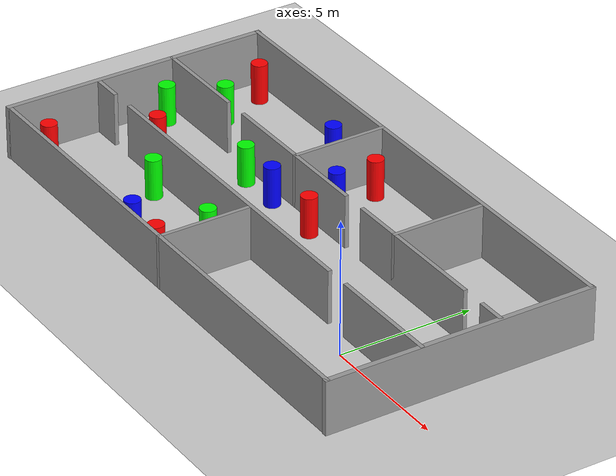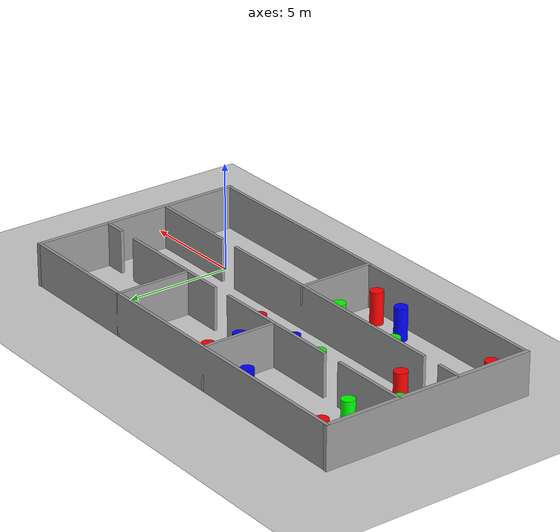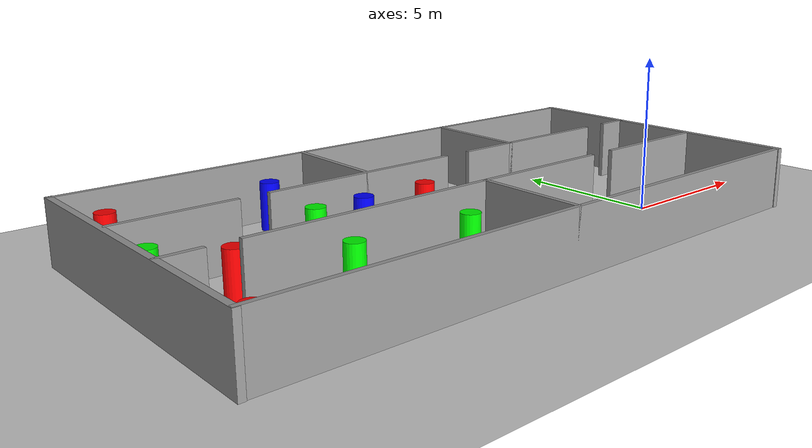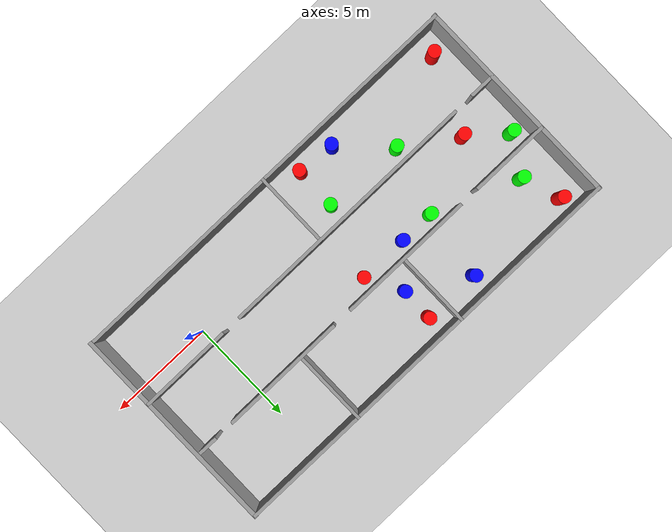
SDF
<sdf version="1.6">
 <world name="default">
  <model name="ground_plane">
   <static>1</static>
   <link name="link">
    <collision name="collision">
     <geometry><plane><normal>0 0 1</normal><size>100 100</size></plane></geometry>
     <surface>
      <contact><collide_bitmask>65535</collide_bitmask></contact>
      <friction><ode><mu>100</mu><mu2>50</mu2></ode></friction>
     </surface>
    </collision>
    <visual name="visual">
     <cast_shadows>0</cast_shadows>
     <geometry><plane><normal>0 0 1</normal><size>100 100</size></plane></geometry>
     <material>
      <script><uri>file://media/materials/scripts/gazebo.material</uri><name>Gazebo/Grey</name></script>
     </material>
    </visual>
   </link>
  </model>
  <model name="indoor1">
   <pose>-6.52396 2.25289 0 0 -0 0</pose>
   <link name="Wall_17">
    <pose>0 -1.5 0 0 -0 0</pose>
    <visual name="Wall_17_Visual_0">
     <pose>-9.43386 0 1 0 -0 0</pose>
     <geometry><box><size>1.28227 0.15 2</size></box></geometry>
     <material>
      <script><uri>file://media/materials/scripts/gazebo.material</uri><name>Gazebo/Grey</name></script>
      <ambient>1 1 1 1</ambient>
     </material>
     <meta><layer>0</layer></meta>
    </visual>
    <collision name="Wall_17_Collision_0">
     <geometry><box><size>1.28227 0.15 2</size></box></geometry>
     <pose>-9.43386 0 1 0 -0 0</pose>
    </collision>
    <visual name="Wall_17_Visual_1">
     <pose>-1.56699 0 1 0 -0 0</pose>
     <geometry><box><size>12.6515 0.15 2</size></box></geometry>
     <material>
      <script><uri>file://media/materials/scripts/gazebo.material</uri><name>Gazebo/Grey</name></script>
      <ambient>1 1 1 1</ambient>
     </material>
     <meta><layer>0</layer></meta>
    </visual>
    <collision name="Wall_17_Collision_1">
     <geometry><box><size>12.6515 0.15 2</size></box></geometry>
     <pose>-1.56699 0 1 0 -0 0</pose>
    </collision>
    <visual name="Wall_17_Visual_2">
     <pose>7.86687 0 1 0 -0 0</pose>
     <geometry><box><size>4.41625 0.15 2</size></box></geometry>
     <material>
      <script><uri>file://media/materials/scripts/gazebo.material</uri><name>Gazebo/Grey</name></script>
      <ambient>1 1 1 1</ambient>
     </material>
     <meta><layer>0</layer></meta>
    </visual>
    <collision name="Wall_17_Collision_2">
     <geometry><box><size>4.41625 0.15 2</size></box></geometry>
     <pose>7.86687 0 1 0 -0 0</pose>
    </collision>
   </link>
   <link name="Wall_19">
    <pose>0 1.5 0 0 -0 0</pose>
    <visual name="Wall_19_Visual_0">
     <pose>-8.16437 0 1 0 -0 0</pose>
     <geometry><box><size>3.82126 0.15 2</size></box></geometry>
     <material>
      <script><uri>file://media/materials/scripts/gazebo.material</uri><name>Gazebo/Grey</name></script>
      <ambient>1 1 1 1</ambient>
     </material>
     <meta><layer>0</layer></meta>
    </visual>
    <collision name="Wall_19_Collision_0">
     <geometry><box><size>3.82126 0.15 2</size></box></geometry>
     <pose>-8.16437 0 1 0 -0 0</pose>
    </collision>
    <visual name="Wall_19_Visual_1">
     <pose>-2.10232 0 1 0 -0 0</pose>
     <geometry><box><size>6.50284 0.15 2</size></box></geometry>
     <material>
      <script><uri>file://media/materials/scripts/gazebo.material</uri><name>Gazebo/Grey</name></script>
      <ambient>1 1 1 1</ambient>
     </material>
     <meta><layer>0</layer></meta>
    </visual>
    <collision name="Wall_19_Collision_1">
     <geometry><box><size>6.50284 0.15 2</size></box></geometry>
     <pose>-2.10232 0 1 0 -0 0</pose>
    </collision>
    <visual name="Wall_19_Visual_2">
     <pose>5.0405 0 1 0 -0 0</pose>
     <geometry><box><size>5.9828 0.15 2</size></box></geometry>
     <material>
      <script><uri>file://media/materials/scripts/gazebo.material</uri><name>Gazebo/Grey</name></script>
      <ambient>1 1 1 1</ambient>
     </material>
     <meta><layer>0</layer></meta>
    </visual>
    <collision name="Wall_19_Collision_2">
     <geometry><box><size>5.9828 0.15 2</size></box></geometry>
     <pose>5.0405 0 1 0 -0 0</pose>
    </collision>
    <visual name="Wall_19_Visual_3">
     <pose>9.50345 0 1 0 -0 0</pose>
     <geometry><box><size>1.1431 0.15 2</size></box></geometry>
     <material>
      <script><uri>file://media/materials/scripts/gazebo.material</uri><name>Gazebo/Grey</name></script>
      <ambient>1 1 1 1</ambient>
     </material>
     <meta><layer>0</layer></meta>
    </visual>
    <collision name="Wall_19_Collision_3">
     <geometry><box><size>1.1431 0.15 2</size></box></geometry>
     <pose>9.50345 0 1 0 -0 0</pose>
    </collision>
   </link>
   <link name="Wall_21">
    <collision name="Wall_21_Collision">
     <geometry><box><size>3.65 0.15 2</size></box></geometry>
     <pose>0 0 1 0 -0 0</pose>
    </collision>
    <visual name="Wall_21_Visual">
     <pose>0 0 1 0 -0 0</pose>
     <geometry><box><size>3.65 0.15 2</size></box></geometry>
     <material>
      <script><uri>file://media/materials/scripts/gazebo.material</uri><name>Gazebo/Grey</name></script>
      <ambient>1 1 1 1</ambient>
     </material>
     <meta><layer>0</layer></meta>
    </visual>
    <pose>-2 3.25 0 0 -0 1.5708</pose>
   </link>
   <link name="Wall_23">
    <collision name="Wall_23_Collision">
     <geometry><box><size>3.65 0.15 2</size></box></geometry>
     <pose>0 0 1 0 -0 0</pose>
    </collision>
    <visual name="Wall_23_Visual">
     <pose>0 0 1 0 -0 0</pose>
     <geometry><box><size>3.65 0.15 2</size></box></geometry>
     <material>
      <script><uri>file://media/materials/scripts/gazebo.material</uri><name>Gazebo/Grey</name></script>
      <ambient>1 1 1 1</ambient>
     </material>
     <meta><layer>0</layer></meta>
    </visual>
    <pose>4 3.25 0 0 -0 1.5708</pose>
   </link>
   <link name="Wall_25">
    <collision name="Wall_25_Collision">
     <geometry><box><size>3.65 0.15 2</size></box></geometry>
     <pose>0 0 1 0 -0 0</pose>
    </collision>
    <visual name="Wall_25_Visual">
     <pose>0 0 1 0 -0 0</pose>
     <geometry><box><size>3.65 0.15 2</size></box></geometry>
     <material>
      <script><uri>file://media/materials/scripts/gazebo.material</uri><name>Gazebo/Grey</name></script>
      <ambient>1 1 1 1</ambient>
     </material>
     <meta><layer>0</layer></meta>
    </visual>
    <pose>0 -3.25 0 0 -0 1.5708</pose>
   </link>
   <link name="Wall_5">
    <collision name="Wall_5_Collision">
     <geometry><box><size>20.15 0.15 2</size></box></geometry>
     <pose>0 0 1 0 -0 0</pose>
    </collision>
    <visual name="Wall_5_Visual">
     <pose>0 0 1 0 -0 0</pose>
     <geometry><box><size>20.15 0.15 2</size></box></geometry>
     <material>
      <script><uri>file://media/materials/scripts/gazebo.material</uri><name>Gazebo/Grey</name></script>
      <ambient>1 1 1 1</ambient>
     </material>
     <meta><layer>0</layer></meta>
    </visual>
    <pose>0 5 0 0 -0 0</pose>
   </link>
   <link name="Wall_6">
    <collision name="Wall_6_Collision">
     <geometry><box><size>10.2 0.2 2</size></box></geometry>
     <pose>0 0 1 0 -0 0</pose>
    </collision>
    <visual name="Wall_6_Visual">
     <pose>0 0 1 0 -0 0</pose>
     <geometry><box><size>10.2 0.2 2</size></box></geometry>
     <material>
      <script><uri>file://media/materials/scripts/gazebo.material</uri><name>Gazebo/Grey</name></script>
      <ambient>1 1 1 1</ambient>
     </material>
     <meta><layer>0</layer></meta>
    </visual>
    <pose>10 0 0 0 0 -1.5708</pose>
   </link>
   <link name="Wall_7">
    <collision name="Wall_7_Collision">
     <geometry><box><size>20.15 0.15 2</size></box></geometry>
     <pose>0 0 1 0 -0 0</pose>
    </collision>
    <visual name="Wall_7_Visual">
     <pose>0 0 1 0 -0 0</pose>
     <geometry><box><size>20.15 0.15 2</size></box></geometry>
     <material>
      <script><uri>file://media/materials/scripts/gazebo.material</uri><name>Gazebo/Grey</name></script>
      <ambient>1 1 1 1</ambient>
     </material>
     <meta><layer>0</layer></meta>
    </visual>
    <pose>0 -5 0 0 -0 3.14159</pose>
   </link>
   <link name="Wall_8">
    <collision name="Wall_8_Collision">
     <geometry><box><size>10.2 0.2 2</size></box></geometry>
     <pose>0 0 1 0 -0 0</pose>
    </collision>
    <visual name="Wall_8_Visual">
     <pose>0 0 1 0 -0 0</pose>
     <geometry><box><size>10.2 0.2 2</size></box></geometry>
     <material>
      <script><uri>file://media/materials/scripts/gazebo.material</uri><name>Gazebo/Grey</name></script>
      <ambient>1 1 1 1</ambient>
     </material>
     <meta><layer>0</layer></meta>
    </visual>
    <pose>-10 0 0 0 -0 1.5708</pose>
   </link>
   <static>1</static>
  </model>
  <model name="class01">
   <link name="link">
    <pose>-0.202221 0.506091 0 0 -0 0</pose>
    <inertial>
     <mass>1</mass>
     <inertia><ixx>0.145833</ixx><ixy>0</ixy><ixz>0</ixz><iyy>0.145833</iyy><iyz>0</iyz><izz>0.125</izz></inertia>
    </inertial>
    <visual name="visual">
     <geometry><cylinder><radius>0.3</radius><length>2</length></cylinder></geometry>
     <material>
      <script><name>Gazebo/Grey</name><uri>file://media/materials/scripts/gazebo.material</uri></script>
      <ambient>1 0 0 1</ambient>
      <diffuse>0.7 0.7 0.7 1</diffuse>
      <specular>0.01 0.01 0.01 1</specular>
      <emissive>0 0 0 1</emissive>
      <shader type="vertex"><normal_map>__default__</normal_map></shader>
     </material>
    </visual>
    <collision name="collision">
     <geometry><cylinder><radius>0.5</radius><length>1</length></cylinder></geometry>
     <surface>
      <friction>
       <ode><mu>1</mu><mu2>1</mu2><fdir1>0 0 0</fdir1><slip1>0</slip1><slip2>0</slip2></ode>
       <torsional>
        <coefficient>1</coefficient>
        <patch_radius>0</patch_radius>
        <surface_radius>0</surface_radius>
        <use_patch_radius>1</use_patch_radius>
        <ode><slip>0</slip></ode>
       </torsional>
      </friction>
      <bounce><restitution_coefficient>0</restitution_coefficient><threshold>1e+06</threshold></bounce>
      <contact>
       <collide_without_contact>0</collide_without_contact>
       <collide_without_contact_bitmask>1</collide_without_contact_bitmask>
       <collide_bitmask>1</collide_bitmask>
       <ode>
        <soft_cfm>0</soft_cfm>
        <soft_erp>0.2</soft_erp>
        <kp>1e+13</kp>
        <kd>1</kd>
        <max_vel>0.01</max_vel>
        <min_depth>0</min_depth>
       </ode>
       <bullet>
        <split_impulse>1</split_impulse>
        <split_impulse_penetration_threshold>-0.01</split_impulse_penetration_threshold>
        <soft_cfm>0</soft_cfm>
        <soft_erp>0.2</soft_erp>
        <kp>1e+13</kp>
        <kd>1</kd>
       </bullet>
      </contact>
     </surface>
    </collision>
   </link>
   <static>0</static>
   <pose>-15.3971 -2.24481 0.5 0 -0 0</pose>
  </model>
  <model name="class01_clone">
   <link name="link">
    <pose>-0.202221 0.506091 0 0 -0 0</pose>
    <inertial>
     <mass>1</mass>
     <inertia><ixx>0.145833</ixx><ixy>0</ixy><ixz>0</ixz><iyy>0.145833</iyy><iyz>0</iyz><izz>0.125</izz></inertia>
    </inertial>
    <visual name="visual">
     <geometry><cylinder><radius>0.3</radius><length>2</length></cylinder></geometry>
     <material>
      <script><name>Gazebo/Grey</name><uri>file://media/materials/scripts/gazebo.material</uri></script>
      <ambient>1 0 0 1</ambient>
      <diffuse>0.7 0.7 0.7 1</diffuse>
      <specular>0.01 0.01 0.01 1</specular>
      <emissive>0 0 0 1</emissive>
      <shader type="vertex"><normal_map>__default__</normal_map></shader>
     </material>
    </visual>
    <collision name="collision">
     <geometry><cylinder><radius>0.5</radius><length>1</length></cylinder></geometry>
     <surface>
      <friction>
       <ode><mu>1</mu><mu2>1</mu2><fdir1>0 0 0</fdir1><slip1>0</slip1><slip2>0</slip2></ode>
       <torsional>
        <coefficient>1</coefficient>
        <patch_radius>0</patch_radius>
        <surface_radius>0</surface_radius>
        <use_patch_radius>1</use_patch_radius>
        <ode><slip>0</slip></ode>
       </torsional>
      </friction>
      <bounce><restitution_coefficient>0</restitution_coefficient><threshold>1e+06</threshold></bounce>
      <contact>
       <collide_without_contact>0</collide_without_contact>
       <collide_without_contact_bitmask>1</collide_without_contact_bitmask>
       <collide_bitmask>1</collide_bitmask>
       <ode>
        <soft_cfm>0</soft_cfm>
        <soft_erp>0.2</soft_erp>
        <kp>1e+13</kp>
        <kd>1</kd>
        <max_vel>0.01</max_vel>
        <min_depth>0</min_depth>
       </ode>
       <bullet>
        <split_impulse>1</split_impulse>
        <split_impulse_penetration_threshold>-0.01</split_impulse_penetration_threshold>
        <soft_cfm>0</soft_cfm>
        <soft_erp>0.2</soft_erp>
        <kp>1e+13</kp>
        <kd>1</kd>
       </bullet>
      </contact>
     </surface>
    </collision>
   </link>
   <static>0</static>
   <pose>-7.73161 -2.5534 0.499994 -3e-06 -1e-06 -0</pose>
  </model>
  <model name="class01_clone_2">
   <link name="link">
    <pose>-0.202221 0.506091 0 0 -0 0</pose>
    <inertial>
     <mass>1</mass>
     <inertia><ixx>0.145833</ixx><ixy>0</ixy><ixz>0</ixz><iyy>0.145833</iyy><iyz>0</iyz><izz>0.125</izz></inertia>
    </inertial>
    <visual name="visual">
     <geometry><cylinder><radius>0.3</radius><length>2</length></cylinder></geometry>
     <material>
      <script><name>Gazebo/Grey</name><uri>file://media/materials/scripts/gazebo.material</uri></script>
      <ambient>1 0 0 1</ambient>
      <diffuse>0.7 0.7 0.7 1</diffuse>
      <specular>0.01 0.01 0.01 1</specular>
      <emissive>0 0 0 1</emissive>
      <shader type="vertex"><normal_map>__default__</normal_map></shader>
     </material>
    </visual>
    <collision name="collision">
     <geometry><cylinder><radius>0.5</radius><length>1</length></cylinder></geometry>
     <surface>
      <friction>
       <ode><mu>1</mu><mu2>1</mu2><fdir1>0 0 0</fdir1><slip1>0</slip1><slip2>0</slip2></ode>
       <torsional>
        <coefficient>1</coefficient>
        <patch_radius>0</patch_radius>
        <surface_radius>0</surface_radius>
        <use_patch_radius>1</use_patch_radius>
        <ode><slip>0</slip></ode>
       </torsional>
      </friction>
      <bounce><restitution_coefficient>0</restitution_coefficient><threshold>1e+06</threshold></bounce>
      <contact>
       <collide_without_contact>0</collide_without_contact>
       <collide_without_contact_bitmask>1</collide_without_contact_bitmask>
       <collide_bitmask>1</collide_bitmask>
       <ode>
        <soft_cfm>0</soft_cfm>
        <soft_erp>0.2</soft_erp>
        <kp>1e+13</kp>
        <kd>1</kd>
        <max_vel>0.01</max_vel>
        <min_depth>0</min_depth>
       </ode>
       <bullet>
        <split_impulse>1</split_impulse>
        <split_impulse_penetration_threshold>-0.01</split_impulse_penetration_threshold>
        <soft_cfm>0</soft_cfm>
        <soft_erp>0.2</soft_erp>
        <kp>1e+13</kp>
        <kd>1</kd>
       </bullet>
      </contact>
     </surface>
    </collision>
   </link>
   <static>0</static>
   <pose>-15.1319 6.07169 0.499994 -3e-06 -1e-06 -0</pose>
  </model>
  <model name="class01_clone_3">
   <link name="link">
    <pose>-0.202221 0.506091 0 0 -0 0</pose>
    <inertial>
     <mass>1</mass>
     <inertia><ixx>0.145833</ixx><ixy>0</ixy><ixz>0</ixz><iyy>0.145833</iyy><iyz>0</iyz><izz>0.125</izz></inertia>
    </inertial>
    <visual name="visual">
     <geometry><cylinder><radius>0.3</radius><length>2</length></cylinder></geometry>
     <material>
      <script><name>Gazebo/Grey</name><uri>file://media/materials/scripts/gazebo.material</uri></script>
      <ambient>1 0 0 1</ambient>
      <diffuse>0.7 0.7 0.7 1</diffuse>
      <specular>0.01 0.01 0.01 1</specular>
      <emissive>0 0 0 1</emissive>
      <shader type="vertex"><normal_map>__default__</normal_map></shader>
     </material>
    </visual>
    <collision name="collision">
     <geometry><cylinder><radius>0.5</radius><length>1</length></cylinder></geometry>
     <surface>
      <friction>
       <ode><mu>1</mu><mu2>1</mu2><fdir1>0 0 0</fdir1><slip1>0</slip1><slip2>0</slip2></ode>
       <torsional>
        <coefficient>1</coefficient>
        <patch_radius>0</patch_radius>
        <surface_radius>0</surface_radius>
        <use_patch_radius>1</use_patch_radius>
        <ode><slip>0</slip></ode>
       </torsional>
      </friction>
      <bounce><restitution_coefficient>0</restitution_coefficient><threshold>1e+06</threshold></bounce>
      <contact>
       <collide_without_contact>0</collide_without_contact>
       <collide_without_contact_bitmask>1</collide_without_contact_bitmask>
       <collide_bitmask>1</collide_bitmask>
       <ode>
        <soft_cfm>0</soft_cfm>
        <soft_erp>0.2</soft_erp>
        <kp>1e+13</kp>
        <kd>1</kd>
        <max_vel>0.01</max_vel>
        <min_depth>0</min_depth>
       </ode>
       <bullet>
        <split_impulse>1</split_impulse>
        <split_impulse_penetration_threshold>-0.01</split_impulse_penetration_threshold>
        <soft_cfm>0</soft_cfm>
        <soft_erp>0.2</soft_erp>
        <kp>1e+13</kp>
        <kd>1</kd>
       </bullet>
      </contact>
     </surface>
    </collision>
   </link>
   <static>0</static>
   <pose>-7.4078 5.86584 0.499994 -3e-06 -1e-06 -0</pose>
  </model>
  <model name="class01_clone_5">
   <link name="link">
    <pose>-0.202221 0.506091 0 0 -0 0</pose>
    <inertial>
     <mass>1</mass>
     <inertia><ixx>0.145833</ixx><ixy>0</ixy><ixz>0</ixz><iyy>0.145833</iyy><iyz>0</iyz><izz>0.125</izz></inertia>
    </inertial>
    <visual name="visual">
     <geometry><cylinder><radius>0.3</radius><length>2</length></cylinder></geometry>
     <material>
      <script><name>Gazebo/Grey</name><uri>file://media/materials/scripts/gazebo.material</uri></script>
      <ambient>1 0 0 1</ambient>
      <diffuse>0.7 0.7 0.7 1</diffuse>
      <specular>0.01 0.01 0.01 1</specular>
      <emissive>0 0 0 1</emissive>
      <shader type="vertex"><normal_map>__default__</normal_map></shader>
     </material>
    </visual>
    <collision name="collision">
     <geometry><cylinder><radius>0.5</radius><length>1</length></cylinder></geometry>
     <surface>
      <friction>
       <ode><mu>1</mu><mu2>1</mu2><fdir1>0 0 0</fdir1><slip1>0</slip1><slip2>0</slip2></ode>
       <torsional>
        <coefficient>1</coefficient>
        <patch_radius>0</patch_radius>
        <surface_radius>0</surface_radius>
        <use_patch_radius>1</use_patch_radius>
        <ode><slip>0</slip></ode>
       </torsional>
      </friction>
      <bounce><restitution_coefficient>0</restitution_coefficient><threshold>1e+06</threshold></bounce>
      <contact>
       <collide_without_contact>0</collide_without_contact>
       <collide_without_contact_bitmask>1</collide_without_contact_bitmask>
       <collide_bitmask>1</collide_bitmask>
       <ode>
        <soft_cfm>0</soft_cfm>
        <soft_erp>0.2</soft_erp>
        <kp>1e+13</kp>
        <kd>1</kd>
        <max_vel>0.01</max_vel>
        <min_depth>0</min_depth>
       </ode>
       <bullet>
        <split_impulse>1</split_impulse>
        <split_impulse_penetration_threshold>-0.01</split_impulse_penetration_threshold>
        <soft_cfm>0</soft_cfm>
        <soft_erp>0.2</soft_erp>
        <kp>1e+13</kp>
        <kd>1</kd>
       </bullet>
      </contact>
     </surface>
    </collision>
   </link>
   <static>0</static>
   <pose>-13.9099 1.19095 0.499994 -3e-06 -1e-06 -0</pose>
  </model>
  <model name="class01_clone_6">
   <link name="link">
    <pose>-0.202221 0.506091 0 0 -0 0</pose>
    <inertial>
     <mass>1</mass>
     <inertia><ixx>0.145833</ixx><ixy>0</ixy><ixz>0</ixz><iyy>0.145833</iyy><iyz>0</iyz><izz>0.125</izz></inertia>
    </inertial>
    <visual name="visual">
     <geometry><cylinder><radius>0.3</radius><length>2</length></cylinder></geometry>
     <material>
      <script><name>Gazebo/Grey</name><uri>file://media/materials/scripts/gazebo.material</uri></script>
      <ambient>1 0 0 1</ambient>
      <diffuse>0.7 0.7 0.7 1</diffuse>
      <specular>0.01 0.01 0.01 1</specular>
      <emissive>0 0 0 1</emissive>
      <shader type="vertex"><normal_map>__default__</normal_map></shader>
     </material>
    </visual>
    <collision name="collision">
     <geometry><cylinder><radius>0.5</radius><length>1</length></cylinder></geometry>
     <surface>
      <friction>
       <ode><mu>1</mu><mu2>1</mu2><fdir1>0 0 0</fdir1><slip1>0</slip1><slip2>0</slip2></ode>
       <torsional>
        <coefficient>1</coefficient>
        <patch_radius>0</patch_radius>
        <surface_radius>0</surface_radius>
        <use_patch_radius>1</use_patch_radius>
        <ode><slip>0</slip></ode>
       </torsional>
      </friction>
      <bounce><restitution_coefficient>0</restitution_coefficient><threshold>1e+06</threshold></bounce>
      <contact>
       <collide_without_contact>0</collide_without_contact>
       <collide_without_contact_bitmask>1</collide_without_contact_bitmask>
       <collide_bitmask>1</collide_bitmask>
       <ode>
        <soft_cfm>0</soft_cfm>
        <soft_erp>0.2</soft_erp>
        <kp>1e+13</kp>
        <kd>1</kd>
        <max_vel>0.01</max_vel>
        <min_depth>0</min_depth>
       </ode>
       <bullet>
        <split_impulse>1</split_impulse>
        <split_impulse_penetration_threshold>-0.01</split_impulse_penetration_threshold>
        <soft_cfm>0</soft_cfm>
        <soft_erp>0.2</soft_erp>
        <kp>1e+13</kp>
        <kd>1</kd>
       </bullet>
      </contact>
     </surface>
    </collision>
   </link>
   <static>0</static>
   <pose>-6.57558 2.67179 0.499996 3e-06 1e-06 -0</pose>
  </model>
  <model name="class02">
   <link name="link">
    <inertial>
     <mass>1</mass>
     <inertia><ixx>0.145833</ixx><ixy>0</ixy><ixz>0</ixz><iyy>0.145833</iyy><iyz>0</iyz><izz>0.125</izz></inertia>
    </inertial>
    <visual name="visual">
     <geometry><cylinder><radius>0.3</radius><length>2</length></cylinder></geometry>
     <material>
      <script><name>Gazebo/Grey</name><uri>file://media/materials/scripts/gazebo.material</uri></script>
      <ambient>0 1 0 1</ambient>
      <diffuse>0.7 0.7 0.7 1</diffuse>
      <specular>0.01 0.01 0.01 1</specular>
      <emissive>0 0 0 1</emissive>
      <shader type="vertex"><normal_map>__default__</normal_map></shader>
     </material>
    </visual>
    <collision name="collision">
     <geometry><cylinder><radius>0.5</radius><length>1</length></cylinder></geometry>
     <surface>
      <friction>
       <ode><mu>1</mu><mu2>1</mu2><fdir1>0 0 0</fdir1><slip1>0</slip1><slip2>0</slip2></ode>
       <torsional>
        <coefficient>1</coefficient>
        <patch_radius>0</patch_radius>
        <surface_radius>0</surface_radius>
        <use_patch_radius>1</use_patch_radius>
        <ode><slip>0</slip></ode>
       </torsional>
      </friction>
      <bounce><restitution_coefficient>0</restitution_coefficient><threshold>1e+06</threshold></bounce>
      <contact>
       <collide_without_contact>0</collide_without_contact>
       <collide_without_contact_bitmask>1</collide_without_contact_bitmask>
       <collide_bitmask>1</collide_bitmask>
       <ode>
        <soft_cfm>0</soft_cfm>
        <soft_erp>0.2</soft_erp>
        <kp>1e+13</kp>
        <kd>1</kd>
        <max_vel>0.01</max_vel>
        <min_depth>0</min_depth>
       </ode>
       <bullet>
        <split_impulse>1</split_impulse>
        <split_impulse_penetration_threshold>-0.01</split_impulse_penetration_threshold>
        <soft_cfm>0</soft_cfm>
        <soft_erp>0.2</soft_erp>
        <kp>1e+13</kp>
        <kd>1</kd>
       </bullet>
      </contact>
     </surface>
    </collision>
   </link>
   <static>0</static>
   <pose>-11.6766 0.078128 0.5 0 -0 0</pose>
  </model>
  <model name="class02_clone">
   <link name="link">
    <inertial>
     <mass>1</mass>
     <inertia><ixx>0.145833</ixx><ixy>0</ixy><ixz>0</ixz><iyy>0.145833</iyy><iyz>0</iyz><izz>0.125</izz></inertia>
    </inertial>
    <visual name="visual">
     <geometry><cylinder><radius>0.3</radius><length>2</length></cylinder></geometry>
     <material>
      <script><name>Gazebo/Grey</name><uri>file://media/materials/scripts/gazebo.material</uri></script>
      <ambient>0 1 0 1</ambient>
      <diffuse>0.7 0.7 0.7 1</diffuse>
      <specular>0.01 0.01 0.01 1</specular>
      <emissive>0 0 0 1</emissive>
      <shader type="vertex"><normal_map>__default__</normal_map></shader>
     </material>
    </visual>
    <collision name="collision">
     <geometry><cylinder><radius>0.5</radius><length>1</length></cylinder></geometry>
     <surface>
      <friction>
       <ode><mu>1</mu><mu2>1</mu2><fdir1>0 0 0</fdir1><slip1>0</slip1><slip2>0</slip2></ode>
       <torsional>
        <coefficient>1</coefficient>
        <patch_radius>0</patch_radius>
        <surface_radius>0</surface_radius>
        <use_patch_radius>1</use_patch_radius>
        <ode><slip>0</slip></ode>
       </torsional>
      </friction>
      <bounce><restitution_coefficient>0</restitution_coefficient><threshold>1e+06</threshold></bounce>
      <contact>
       <collide_without_contact>0</collide_without_contact>
       <collide_without_contact_bitmask>1</collide_without_contact_bitmask>
       <collide_bitmask>1</collide_bitmask>
       <ode>
        <soft_cfm>0</soft_cfm>
        <soft_erp>0.2</soft_erp>
        <kp>1e+13</kp>
        <kd>1</kd>
        <max_vel>0.01</max_vel>
        <min_depth>0</min_depth>
       </ode>
       <bullet>
        <split_impulse>1</split_impulse>
        <split_impulse_penetration_threshold>-0.01</split_impulse_penetration_threshold>
        <soft_cfm>0</soft_cfm>
        <soft_erp>0.2</soft_erp>
        <kp>1e+13</kp>
        <kd>1</kd>
       </bullet>
      </contact>
     </surface>
    </collision>
   </link>
   <static>0</static>
   <pose>-7.89438 -0.076218 0.499998 3e-06 1e-06 -0</pose>
  </model>
  <model name="class02_clone_6">
   <link name="link">
    <inertial>
     <mass>1</mass>
     <inertia><ixx>0.145833</ixx><ixy>0</ixy><ixz>0</ixz><iyy>0.145833</iyy><iyz>0</iyz><izz>0.125</izz></inertia>
    </inertial>
    <visual name="visual">
     <geometry><cylinder><radius>0.3</radius><length>2</length></cylinder></geometry>
     <material>
      <script><name>Gazebo/Grey</name><uri>file://media/materials/scripts/gazebo.material</uri></script>
      <ambient>0 1 0 1</ambient>
      <diffuse>0.7 0.7 0.7 1</diffuse>
      <specular>0.01 0.01 0.01 1</specular>
      <emissive>0 0 0 1</emissive>
      <shader type="vertex"><normal_map>__default__</normal_map></shader>
     </material>
    </visual>
    <collision name="collision">
     <geometry><cylinder><radius>0.5</radius><length>1</length></cylinder></geometry>
     <surface>
      <friction>
       <ode><mu>1</mu><mu2>1</mu2><fdir1>0 0 0</fdir1><slip1>0</slip1><slip2>0</slip2></ode>
       <torsional>
        <coefficient>1</coefficient>
        <patch_radius>0</patch_radius>
        <surface_radius>0</surface_radius>
        <use_patch_radius>1</use_patch_radius>
        <ode><slip>0</slip></ode>
       </torsional>
      </friction>
      <bounce><restitution_coefficient>0</restitution_coefficient><threshold>1e+06</threshold></bounce>
      <contact>
       <collide_without_contact>0</collide_without_contact>
       <collide_without_contact_bitmask>1</collide_without_contact_bitmask>
       <collide_bitmask>1</collide_bitmask>
       <ode>
        <soft_cfm>0</soft_cfm>
        <soft_erp>0.2</soft_erp>
        <kp>1e+13</kp>
        <kd>1</kd>
        <max_vel>0.01</max_vel>
        <min_depth>0</min_depth>
       </ode>
       <bullet>
        <split_impulse>1</split_impulse>
        <split_impulse_penetration_threshold>-0.01</split_impulse_penetration_threshold>
        <soft_cfm>0</soft_cfm>
        <soft_erp>0.2</soft_erp>
        <kp>1e+13</kp>
        <kd>1</kd>
       </bullet>
      </contact>
     </surface>
    </collision>
   </link>
   <static>0</static>
   <pose>-14.6824 4.77954 0.499998 3e-06 2e-06 0</pose>
  </model>
  <model name="class02_clone_7">
   <link name="link">
    <inertial>
     <mass>1</mass>
     <inertia><ixx>0.145833</ixx><ixy>0</ixy><ixz>0</ixz><iyy>0.145833</iyy><iyz>0</iyz><izz>0.125</izz></inertia>
    </inertial>
    <visual name="visual">
     <geometry><cylinder><radius>0.3</radius><length>2</length></cylinder></geometry>
     <material>
      <script><name>Gazebo/Grey</name><uri>file://media/materials/scripts/gazebo.material</uri></script>
      <ambient>0 1 0 1</ambient>
      <diffuse>0.7 0.7 0.7 1</diffuse>
      <specular>0.01 0.01 0.01 1</specular>
      <emissive>0 0 0 1</emissive>
      <shader type="vertex"><normal_map>__default__</normal_map></shader>
     </material>
    </visual>
    <collision name="collision">
     <geometry><cylinder><radius>0.5</radius><length>1</length></cylinder></geometry>
     <surface>
      <friction>
       <ode><mu>1</mu><mu2>1</mu2><fdir1>0 0 0</fdir1><slip1>0</slip1><slip2>0</slip2></ode>
       <torsional>
        <coefficient>1</coefficient>
        <patch_radius>0</patch_radius>
        <surface_radius>0</surface_radius>
        <use_patch_radius>1</use_patch_radius>
        <ode><slip>0</slip></ode>
       </torsional>
      </friction>
      <bounce><restitution_coefficient>0</restitution_coefficient><threshold>1e+06</threshold></bounce>
      <contact>
       <collide_without_contact>0</collide_without_contact>
       <collide_without_contact_bitmask>1</collide_without_contact_bitmask>
       <collide_bitmask>1</collide_bitmask>
       <ode>
        <soft_cfm>0</soft_cfm>
        <soft_erp>0.2</soft_erp>
        <kp>1e+13</kp>
        <kd>1</kd>
        <max_vel>0.01</max_vel>
        <min_depth>0</min_depth>
       </ode>
       <bullet>
        <split_impulse>1</split_impulse>
        <split_impulse_penetration_threshold>-0.01</split_impulse_penetration_threshold>
        <soft_cfm>0</soft_cfm>
        <soft_erp>0.2</soft_erp>
        <kp>1e+13</kp>
        <kd>1</kd>
       </bullet>
      </contact>
     </surface>
    </collision>
   </link>
   <static>0</static>
   <pose>-10.7524 3.17788 0.499998 3e-06 2e-06 0</pose>
  </model>
  <model name="class02_clone_8">
   <link name="link">
    <inertial>
     <mass>1</mass>
     <inertia><ixx>0.145833</ixx><ixy>0</ixy><ixz>0</ixz><iyy>0.145833</iyy><iyz>0</iyz><izz>0.125</izz></inertia>
    </inertial>
    <visual name="visual">
     <geometry><cylinder><radius>0.3</radius><length>2</length></cylinder></geometry>
     <material>
      <script><name>Gazebo/Grey</name><uri>file://media/materials/scripts/gazebo.material</uri></script>
      <ambient>0 1 0 1</ambient>
      <diffuse>0.7 0.7 0.7 1</diffuse>
      <specular>0.01 0.01 0.01 1</specular>
      <emissive>0 0 0 1</emissive>
      <shader type="vertex"><normal_map>__default__</normal_map></shader>
     </material>
    </visual>
    <collision name="collision">
     <geometry><cylinder><radius>0.5</radius><length>1</length></cylinder></geometry>
     <surface>
      <friction>
       <ode><mu>1</mu><mu2>1</mu2><fdir1>0 0 0</fdir1><slip1>0</slip1><slip2>0</slip2></ode>
       <torsional>
        <coefficient>1</coefficient>
        <patch_radius>0</patch_radius>
        <surface_radius>0</surface_radius>
        <use_patch_radius>1</use_patch_radius>
        <ode><slip>0</slip></ode>
       </torsional>
      </friction>
      <bounce><restitution_coefficient>0</restitution_coefficient><threshold>1e+06</threshold></bounce>
      <contact>
       <collide_without_contact>0</collide_without_contact>
       <collide_without_contact_bitmask>1</collide_without_contact_bitmask>
       <collide_bitmask>1</collide_bitmask>
       <ode>
        <soft_cfm>0</soft_cfm>
        <soft_erp>0.2</soft_erp>
        <kp>1e+13</kp>
        <kd>1</kd>
        <max_vel>0.01</max_vel>
        <min_depth>0</min_depth>
       </ode>
       <bullet>
        <split_impulse>1</split_impulse>
        <split_impulse_penetration_threshold>-0.01</split_impulse_penetration_threshold>
        <soft_cfm>0</soft_cfm>
        <soft_erp>0.2</soft_erp>
        <kp>1e+13</kp>
        <kd>1</kd>
       </bullet>
      </contact>
     </surface>
    </collision>
   </link>
   <static>0</static>
   <pose>-15.7488 3.04611 0.499992 -3e-06 -2e-06 0</pose>
  </model>
  <model name="class03_clone_0">
   <link name="link">
    <inertial>
     <mass>1</mass>
     <inertia><ixx>0.145833</ixx><ixy>0</ixy><ixz>0</ixz><iyy>0.145833</iyy><iyz>0</iyz><izz>0.125</izz></inertia>
    </inertial>
    <visual name="visual">
     <geometry><cylinder><radius>0.3</radius><length>2</length></cylinder></geometry>
     <material>
      <script><name>Gazebo/Grey</name><uri>file://media/materials/scripts/gazebo.material</uri></script>
      <ambient>0 0 1 1</ambient>
      <diffuse>0.7 0.7 0.7 1</diffuse>
      <specular>0.01 0.01 0.01 1</specular>
      <emissive>0 0 0 1</emissive>
      <shader type="vertex"><normal_map>__default__</normal_map></shader>
     </material>
    </visual>
    <collision name="collision">
     <geometry><cylinder><radius>0.5</radius><length>1</length></cylinder></geometry>
     <surface>
      <friction>
       <ode><mu>1</mu><mu2>1</mu2><fdir1>0 0 0</fdir1><slip1>0</slip1><slip2>0</slip2></ode>
       <torsional>
        <coefficient>1</coefficient>
        <patch_radius>0</patch_radius>
        <surface_radius>0</surface_radius>
        <use_patch_radius>1</use_patch_radius>
        <ode><slip>0</slip></ode>
       </torsional>
      </friction>
      <bounce><restitution_coefficient>0</restitution_coefficient><threshold>1e+06</threshold></bounce>
      <contact>
       <collide_without_contact>0</collide_without_contact>
       <collide_without_contact_bitmask>1</collide_without_contact_bitmask>
       <collide_bitmask>1</collide_bitmask>
       <ode>
        <soft_cfm>0</soft_cfm>
        <soft_erp>0.2</soft_erp>
        <kp>1e+13</kp>
        <kd>1</kd>
        <max_vel>0.01</max_vel>
        <min_depth>0</min_depth>
       </ode>
       <bullet>
        <split_impulse>1</split_impulse>
        <split_impulse_penetration_threshold>-0.01</split_impulse_penetration_threshold>
        <soft_cfm>0</soft_cfm>
        <soft_erp>0.2</soft_erp>
        <kp>1e+13</kp>
        <kd>1</kd>
       </bullet>
      </contact>
     </surface>
    </collision>
   </link>
   <static>0</static>
   <pose>-9.6969 -1.90835 0.499991 0 -0 0</pose>
  </model>
  <model name="class03_clone_1">
   <link name="link">
    <inertial>
     <mass>1</mass>
     <inertia><ixx>0.145833</ixx><ixy>0</ixy><ixz>0</ixz><iyy>0.145833</iyy><iyz>0</iyz><izz>0.125</izz></inertia>
    </inertial>
    <visual name="visual">
     <geometry><cylinder><radius>0.3</radius><length>2</length></cylinder></geometry>
     <material>
      <script><name>Gazebo/Grey</name><uri>file://media/materials/scripts/gazebo.material</uri></script>
      <ambient>0 0 1 1</ambient>
      <diffuse>0.7 0.7 0.7 1</diffuse>
      <specular>0.01 0.01 0.01 1</specular>
      <emissive>0 0 0 1</emissive>
      <shader type="vertex"><normal_map>__default__</normal_map></shader>
     </material>
    </visual>
    <collision name="collision">
     <geometry><cylinder><radius>0.5</radius><length>1</length></cylinder></geometry>
     <surface>
      <friction>
       <ode><mu>1</mu><mu2>1</mu2><fdir1>0 0 0</fdir1><slip1>0</slip1><slip2>0</slip2></ode>
       <torsional>
        <coefficient>1</coefficient>
        <patch_radius>0</patch_radius>
        <surface_radius>0</surface_radius>
        <use_patch_radius>1</use_patch_radius>
        <ode><slip>0</slip></ode>
       </torsional>
      </friction>
      <bounce><restitution_coefficient>0</restitution_coefficient><threshold>1e+06</threshold></bounce>
      <contact>
       <collide_without_contact>0</collide_without_contact>
       <collide_without_contact_bitmask>1</collide_without_contact_bitmask>
       <collide_bitmask>1</collide_bitmask>
       <ode>
        <soft_cfm>0</soft_cfm>
        <soft_erp>0.2</soft_erp>
        <kp>1e+13</kp>
        <kd>1</kd>
        <max_vel>0.01</max_vel>
        <min_depth>0</min_depth>
       </ode>
       <bullet>
        <split_impulse>1</split_impulse>
        <split_impulse_penetration_threshold>-0.01</split_impulse_penetration_threshold>
        <soft_cfm>0</soft_cfm>
        <soft_erp>0.2</soft_erp>
        <kp>1e+13</kp>
        <kd>1</kd>
       </bullet>
      </contact>
     </surface>
    </collision>
   </link>
   <static>0</static>
   <pose>-9.0948 3.17789 0.499995 -6e-06 0 0</pose>
  </model>
  <model name="class03_clone_2">
   <link name="link">
    <inertial>
     <mass>1</mass>
     <inertia><ixx>0.145833</ixx><ixy>0</ixy><ixz>0</ixz><iyy>0.145833</iyy><iyz>0</iyz><izz>0.125</izz></inertia>
    </inertial>
    <visual name="visual">
     <geometry><cylinder><radius>0.3</radius><length>2</length></cylinder></geometry>
     <material>
      <script><name>Gazebo/Grey</name><uri>file://media/materials/scripts/gazebo.material</uri></script>
      <ambient>0 0 1 1</ambient>
      <diffuse>0.7 0.7 0.7 1</diffuse>
      <specular>0.01 0.01 0.01 1</specular>
      <emissive>0 0 0 1</emissive>
      <shader type="vertex"><normal_map>__default__</normal_map></shader>
     </material>
    </visual>
    <collision name="collision">
     <geometry><cylinder><radius>0.5</radius><length>1</length></cylinder></geometry>
     <surface>
      <friction>
       <ode><mu>1</mu><mu2>1</mu2><fdir1>0 0 0</fdir1><slip1>0</slip1><slip2>0</slip2></ode>
       <torsional>
        <coefficient>1</coefficient>
        <patch_radius>0</patch_radius>
        <surface_radius>0</surface_radius>
        <use_patch_radius>1</use_patch_radius>
        <ode><slip>0</slip></ode>
       </torsional>
      </friction>
      <bounce><restitution_coefficient>0</restitution_coefficient><threshold>1e+06</threshold></bounce>
      <contact>
       <collide_without_contact>0</collide_without_contact>
       <collide_without_contact_bitmask>1</collide_without_contact_bitmask>
       <collide_bitmask>1</collide_bitmask>
       <ode>
        <soft_cfm>0</soft_cfm>
        <soft_erp>0.2</soft_erp>
        <kp>1e+13</kp>
        <kd>1</kd>
        <max_vel>0.01</max_vel>
        <min_depth>0</min_depth>
       </ode>
       <bullet>
        <split_impulse>1</split_impulse>
        <split_impulse_penetration_threshold>-0.01</split_impulse_penetration_threshold>
        <soft_cfm>0</soft_cfm>
        <soft_erp>0.2</soft_erp>
        <kp>1e+13</kp>
        <kd>1</kd>
       </bullet>
      </contact>
     </surface>
    </collision>
   </link>
   <static>0</static>
   <pose>-10.2925 6.40681 0.499991 0 -0 0</pose>
  </model>
  <model name="class03_clone_3">
   <link name="link">
    <inertial>
     <mass>1</mass>
     <inertia><ixx>0.145833</ixx><ixy>0</ixy><ixz>0</ixz><iyy>0.145833</iyy><iyz>0</iyz><izz>0.125</izz></inertia>
    </inertial>
    <visual name="visual">
     <geometry><cylinder><radius>0.3</radius><length>2</length></cylinder></geometry>
     <material>
      <script><name>Gazebo/Grey</name><uri>file://media/materials/scripts/gazebo.material</uri></script>
      <ambient>0 0 1 1</ambient>
      <diffuse>0.7 0.7 0.7 1</diffuse>
      <specular>0.01 0.01 0.01 1</specular>
      <emissive>0 0 0 1</emissive>
      <shader type="vertex"><normal_map>__default__</normal_map></shader>
     </material>
    </visual>
    <collision name="collision">
     <geometry><cylinder><radius>0.5</radius><length>1</length></cylinder></geometry>
     <surface>
      <friction>
       <ode><mu>1</mu><mu2>1</mu2><fdir1>0 0 0</fdir1><slip1>0</slip1><slip2>0</slip2></ode>
       <torsional>
        <coefficient>1</coefficient>
        <patch_radius>0</patch_radius>
        <surface_radius>0</surface_radius>
        <use_patch_radius>1</use_patch_radius>
        <ode><slip>0</slip></ode>
       </torsional>
      </friction>
      <bounce><restitution_coefficient>0</restitution_coefficient><threshold>1e+06</threshold></bounce>
      <contact>
       <collide_without_contact>0</collide_without_contact>
       <collide_without_contact_bitmask>1</collide_without_contact_bitmask>
       <collide_bitmask>1</collide_bitmask>
       <ode>
        <soft_cfm>0</soft_cfm>
        <soft_erp>0.2</soft_erp>
        <kp>1e+13</kp>
        <kd>1</kd>
        <max_vel>0.01</max_vel>
        <min_depth>0</min_depth>
       </ode>
       <bullet>
        <split_impulse>1</split_impulse>
        <split_impulse_penetration_threshold>-0.01</split_impulse_penetration_threshold>
        <soft_cfm>0</soft_cfm>
        <soft_erp>0.2</soft_erp>
        <kp>1e+13</kp>
        <kd>1</kd>
       </bullet>
      </contact>
     </surface>
    </collision>
   </link>
   <static>0</static>
   <pose>-7.64786 4.83616 0.499991 0 -0 0</pose>
  </model>
 </world>
</sdf>
